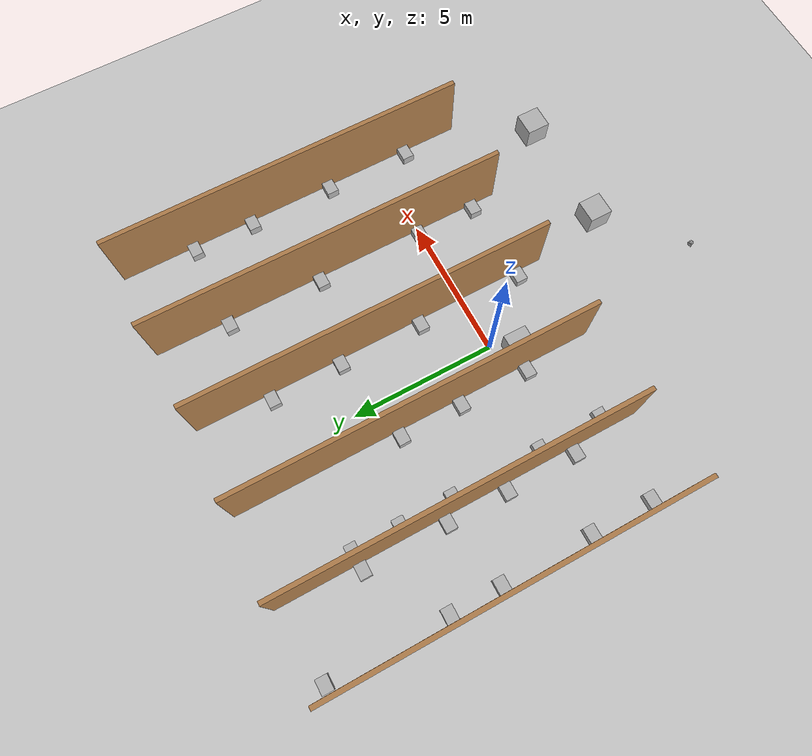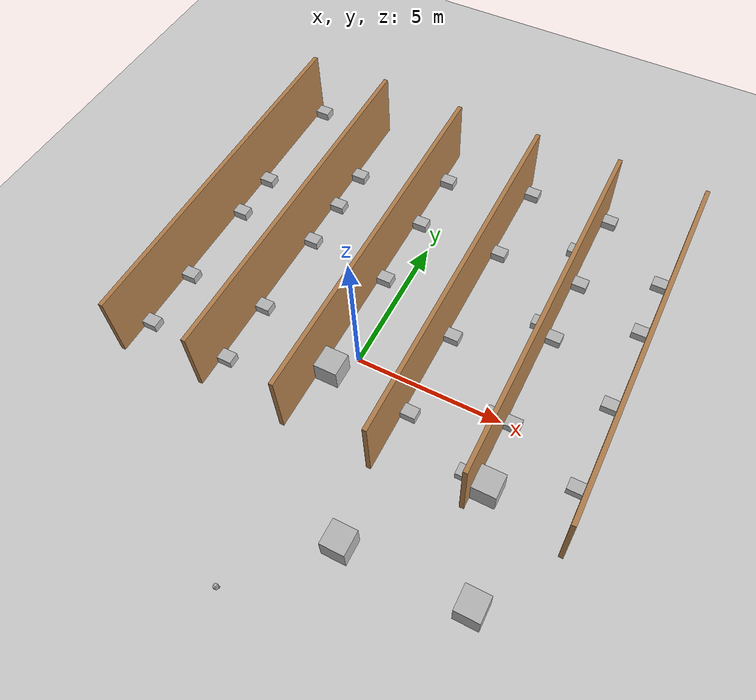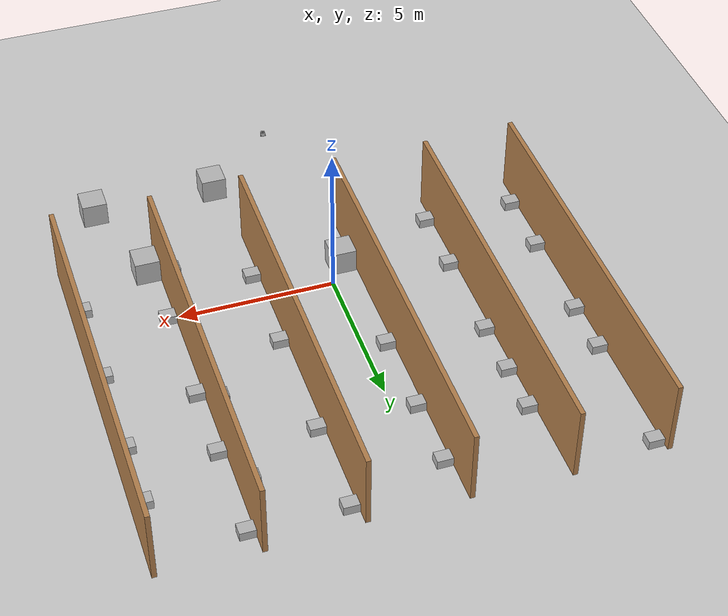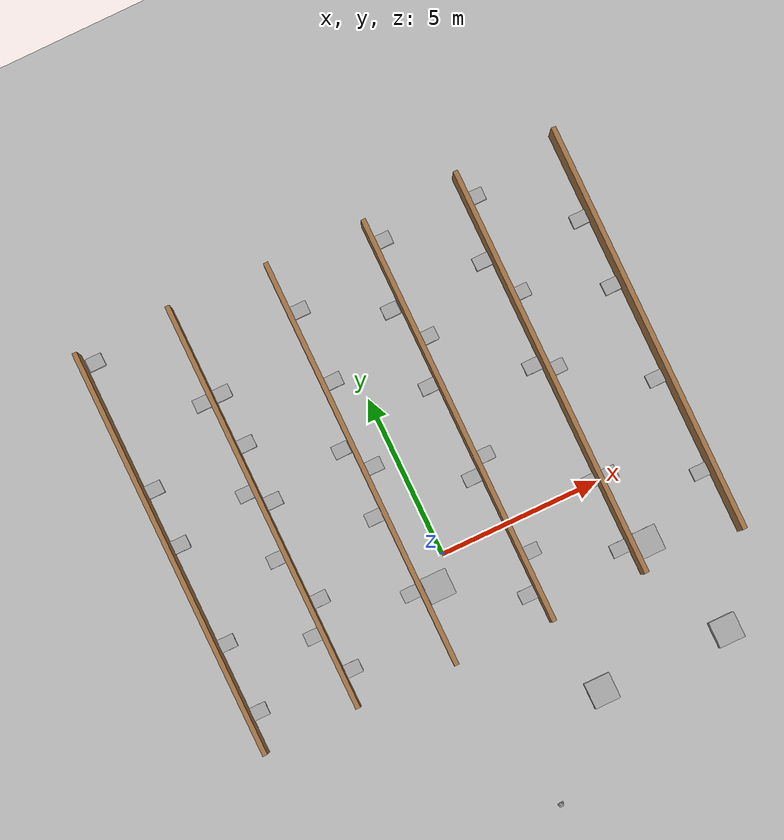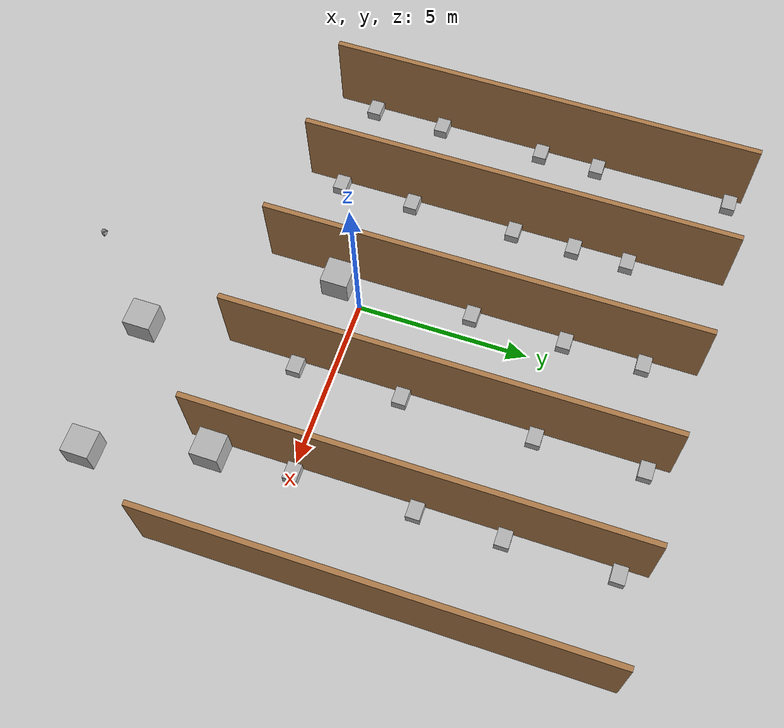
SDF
<sdf version="1.7">
 <world name="default">
  <light name="sun" type="directional">
   <pose>0 0 10 0 -0 0</pose>
   <diffuse>0.8 0.8 0.8 1</diffuse>
   <specular>0.2 0.2 0.2 1</specular>
   <attenuation>
    <range>1000</range>
    <constant>0.9</constant>
    <linear>0.01</linear>
    <quadratic>0.001</quadratic>
   </attenuation>
   <direction>-0.5 0.1 -0.9</direction>
   <spot><inner_angle>0</inner_angle><outer_angle>0</outer_angle><falloff>0</falloff></spot>
  </light>
  <model name="ground_plane">
   <static>1</static>
   <link name="link">
    <collision name="collision">
     <geometry><plane><normal>0 0 1</normal><size>100 100</size></plane></geometry>
     <surface><friction><ode><mu>100</mu><mu2>50</mu2></ode></friction></surface>
    </collision>
    <visual name="visual">
     <cast_shadows>0</cast_shadows>
     <geometry><plane><normal>0 0 1</normal><size>100 100</size></plane></geometry>
     <material>
      <script><uri>file://media/materials/scripts/gazebo.material</uri><name>Gazebo/Grey</name></script>
     </material>
    </visual>
   </link>
  </model>
  <gravity>0 0 -9.8</gravity>
  <magnetic_field>6e-06 2.3e-05 -4.2e-05</magnetic_field>
  <atmosphere type="adiabatic"/>
  <physics type="ode">
   <max_step_size>0.001</max_step_size>
   <real_time_factor>1</real_time_factor>
   <real_time_update_rate>1000</real_time_update_rate>
  </physics>
  <scene><ambient>0.4 0.4 0.4 1</ambient><background>0.7 0.7 0.7 1</background><shadows>1</shadows></scene>
  <audio><device>default</device></audio>
  <spherical_coordinates>
   <surface_model>EARTH_WGS84</surface_model>
   <latitude_deg>0</latitude_deg>
   <longitude_deg>0</longitude_deg>
   <elevation>0</elevation>
   <heading_deg>0</heading_deg>
  </spherical_coordinates>
  <model name="Untitled">
   <pose>-3.53983 3.34344 0 0 -0 0</pose>
   <link name="Wall_1">
    <collision name="Wall_1_Collision">
     <geometry><box><size>12.75 0.15 2.5</size></box></geometry>
     <pose>0 0 1.25 0 -0 0</pose>
    </collision>
    <visual name="Wall_1_Visual">
     <pose>0 0 1.25 0 -0 0</pose>
     <geometry><box><size>12.75 0.15 2.5</size></box></geometry>
     <material>
      <script><uri>file://media/materials/scripts/gazebo.material</uri><name>Gazebo/Wood</name></script>
      <ambient>1 1 1 1</ambient>
     </material>
     <meta><layer>0</layer></meta>
    </visual>
    <pose>-3.51396 -0 0 0 -0 -1.5708</pose>
   </link>
   <static>1</static>
  </model>
  <model name="Untitled_clone">
   <pose>-0.56503 3.41415 0 0 -0 0</pose>
   <link name="Wall_1">
    <collision name="Wall_1_Collision">
     <geometry><box><size>12.75 0.15 2.5</size></box></geometry>
     <pose>0 0 1.25 0 -0 0</pose>
    </collision>
    <visual name="Wall_1_Visual">
     <pose>0 0 1.25 0 -0 0</pose>
     <geometry><box><size>12.75 0.15 2.5</size></box></geometry>
     <material>
      <script><uri>file://media/materials/scripts/gazebo.material</uri><name>Gazebo/Wood</name></script>
      <ambient>1 1 1 1</ambient>
     </material>
     <meta><layer>0</layer></meta>
    </visual>
    <pose>-3.51396 -0 0 0 -0 -1.5708</pose>
   </link>
   <static>1</static>
  </model>
  <model name="Untitled_clone_0">
   <pose>2.51285 3.32201 0 0 -0 0</pose>
   <link name="Wall_1">
    <collision name="Wall_1_Collision">
     <geometry><box><size>12.75 0.15 2.5</size></box></geometry>
     <pose>0 0 1.25 0 -0 0</pose>
    </collision>
    <visual name="Wall_1_Visual">
     <pose>0 0 1.25 0 -0 0</pose>
     <geometry><box><size>12.75 0.15 2.5</size></box></geometry>
     <material>
      <script><uri>file://media/materials/scripts/gazebo.material</uri><name>Gazebo/Wood</name></script>
      <ambient>1 1 1 1</ambient>
     </material>
     <meta><layer>0</layer></meta>
    </visual>
    <pose>-3.51396 -0 0 0 -0 -1.5708</pose>
   </link>
   <static>1</static>
  </model>
  <model name="Untitled_clone_1">
   <pose>5.56827 3.2499 0 0 -0 0</pose>
   <link name="Wall_1">
    <collision name="Wall_1_Collision">
     <geometry><box><size>12.75 0.15 2.5</size></box></geometry>
     <pose>0 0 1.25 0 -0 0</pose>
    </collision>
    <visual name="Wall_1_Visual">
     <pose>0 0 1.25 0 -0 0</pose>
     <geometry><box><size>12.75 0.15 2.5</size></box></geometry>
     <material>
      <script><uri>file://media/materials/scripts/gazebo.material</uri><name>Gazebo/Wood</name></script>
      <ambient>1 1 1 1</ambient>
     </material>
     <meta><layer>0</layer></meta>
    </visual>
    <pose>-3.51396 -0 0 0 -0 -1.5708</pose>
   </link>
   <static>1</static>
  </model>
  <model name="Untitled_clone_2">
   <pose>8.54978 3.36593 0 0 -0 0</pose>
   <link name="Wall_1">
    <collision name="Wall_1_Collision">
     <geometry><box><size>12.75 0.15 2.5</size></box></geometry>
     <pose>0 0 1.25 0 -0 0</pose>
    </collision>
    <visual name="Wall_1_Visual">
     <pose>0 0 1.25 0 -0 0</pose>
     <geometry><box><size>12.75 0.15 2.5</size></box></geometry>
     <material>
      <script><uri>file://media/materials/scripts/gazebo.material</uri><name>Gazebo/Wood</name></script>
      <ambient>1 1 1 1</ambient>
     </material>
     <meta><layer>0</layer></meta>
    </visual>
    <pose>-3.51396 -0 0 0 -0 -1.5708</pose>
   </link>
   <static>1</static>
  </model>
  <model name="Untitled_clone_3">
   <pose>11.6265 3.29501 0 0 -0 0</pose>
   <link name="Wall_1">
    <collision name="Wall_1_Collision">
     <geometry><box><size>12.75 0.15 2.5</size></box></geometry>
     <pose>0 0 1.25 0 -0 0</pose>
    </collision>
    <visual name="Wall_1_Visual">
     <pose>0 0 1.25 0 -0 0</pose>
     <geometry><box><size>12.75 0.15 2.5</size></box></geometry>
     <material>
      <script><uri>file://media/materials/scripts/gazebo.material</uri><name>Gazebo/Wood</name></script>
      <ambient>1 1 1 1</ambient>
     </material>
     <meta><layer>0</layer></meta>
    </visual>
    <pose>-3.51396 -0 0 0 -0 -1.5708</pose>
   </link>
   <static>1</static>
  </model>
  <model name="number1">
   <pose>2.48066 -5.5478 0.4 0 -0 0</pose>
   <static>1</static>
   <link name="link">
    <visual name="visual">
     <geometry><mesh><uri>model://number1/meshes/number.dae</uri></mesh></geometry>
     <material>
      <script>
       <uri>model://number1/materials/scripts</uri>
       <uri>model://number1/materials/textures</uri>
       <name>Number/One</name>
      </script>
     </material>
    </visual>
   </link>
  </model>
  <model name="number2">
   <pose>-0.505231 -0.78441 0.4 0 -0 0</pose>
   <static>1</static>
   <link name="link">
    <visual name="visual">
     <geometry><mesh><uri>model://number1/meshes/number.dae</uri></mesh></geometry>
     <material>
      <script>
       <uri>model://number2/materials/scripts</uri>
       <uri>model://number2/materials/textures</uri>
       <name>Number/Two</name>
      </script>
     </material>
    </visual>
   </link>
  </model>
  <model name="number6">
   <pose>5.50741 -2.22939 0.4 0 -0 0</pose>
   <static>1</static>
   <link name="link">
    <visual name="visual">
     <geometry><mesh><uri>model://number1/meshes/number.dae</uri></mesh></geometry>
     <material>
      <script>
       <uri>model://number6/materials/scripts</uri>
       <uri>model://number6/materials/textures</uri>
       <name>Number/Six</name>
      </script>
     </material>
    </visual>
   </link>
  </model>
  <model name="number7">
   <pose>6.48938 -5.50489 0.4 0 -0 0</pose>
   <static>1</static>
   <link name="link">
    <visual name="visual">
     <geometry><mesh><uri>model://number1/meshes/number.dae</uri></mesh></geometry>
     <material>
      <script>
       <uri>model://number7/materials/scripts</uri>
       <uri>model://number7/materials/textures</uri>
       <name>Number/Seven</name>
      </script>
     </material>
    </visual>
   </link>
  </model>
  <model name="cardboard_box">
   <pose>-6.69674 9.36496 0.149 0 -0 0</pose>
   <link name="link">
    <inertial>
     <mass>2</mass>
     <inertia>
      <ixx>0.0416667</ixx>
      <ixy>0</ixy>
      <ixz>0</ixz>
      <iyy>0.0566667</iyy>
      <iyz>0</iyz>
      <izz>0.0683333</izz>
     </inertia>
    </inertial>
    <collision name="collision">
     <geometry><box><size>0.5 0.4 0.3</size></box></geometry>
     <surface>
      <friction><ode><mu>1</mu><mu2>1</mu2></ode></friction>
      <contact><ode><kp>1e+07</kp><kd>1</kd><min_depth>0.001</min_depth><max_vel>0.1</max_vel></ode></contact>
     </surface>
    </collision>
    <visual name="visual">
     <pose>0 0 -0.15 0 -0 0</pose>
     <geometry>
      <mesh><uri>model://cardboard_box/meshes/cardboard_box.dae</uri><scale>1.25932 1.00745 0.755591</scale></mesh>
     </geometry>
    </visual>
   </link>
  </model>
  <model name="cardboard_box_clone">
   <pose>-4.40341 6.95213 0.149 0 0 -4e-06</pose>
   <link name="link">
    <inertial>
     <mass>2</mass>
     <inertia>
      <ixx>0.0416667</ixx>
      <ixy>0</ixy>
      <ixz>0</ixz>
      <iyy>0.0566667</iyy>
      <iyz>0</iyz>
      <izz>0.0683333</izz>
     </inertia>
    </inertial>
    <collision name="collision">
     <geometry><box><size>0.5 0.4 0.3</size></box></geometry>
     <surface>
      <friction><ode><mu>1</mu><mu2>1</mu2></ode></friction>
      <contact><ode><kp>1e+07</kp><kd>1</kd><min_depth>0.001</min_depth><max_vel>0.1</max_vel></ode></contact>
     </surface>
    </collision>
    <visual name="visual">
     <pose>0 0 -0.15 0 -0 0</pose>
     <geometry>
      <mesh><uri>model://cardboard_box/meshes/cardboard_box.dae</uri><scale>1.25932 1.00745 0.755591</scale></mesh>
     </geometry>
    </visual>
   </link>
  </model>
  <model name="cardboard_box_clone_0">
   <pose>-6.72934 5.29143 0.149 0 -0 -2e-06</pose>
   <link name="link">
    <inertial>
     <mass>2</mass>
     <inertia>
      <ixx>0.0416667</ixx>
      <ixy>0</ixy>
      <ixz>0</ixz>
      <iyy>0.0566667</iyy>
      <iyz>0</iyz>
      <izz>0.0683333</izz>
     </inertia>
    </inertial>
    <collision name="collision">
     <geometry><box><size>0.5 0.4 0.3</size></box></geometry>
     <surface>
      <friction><ode><mu>1</mu><mu2>1</mu2></ode></friction>
      <contact><ode><kp>1e+07</kp><kd>1</kd><min_depth>0.001</min_depth><max_vel>0.1</max_vel></ode></contact>
     </surface>
    </collision>
    <visual name="visual">
     <pose>0 0 -0.15 0 -0 0</pose>
     <geometry>
      <mesh><uri>model://cardboard_box/meshes/cardboard_box.dae</uri><scale>1.25932 1.00745 0.755591</scale></mesh>
     </geometry>
    </visual>
   </link>
  </model>
  <model name="cardboard_box_clone_1">
   <pose>-4.40344 4.03564 0.149 0 0 -5e-06</pose>
   <link name="link">
    <inertial>
     <mass>2</mass>
     <inertia>
      <ixx>0.0416667</ixx>
      <ixy>0</ixy>
      <ixz>0</ixz>
      <iyy>0.0566667</iyy>
      <iyz>0</iyz>
      <izz>0.0683333</izz>
     </inertia>
    </inertial>
    <collision name="collision">
     <geometry><box><size>0.5 0.4 0.3</size></box></geometry>
     <surface>
      <friction><ode><mu>1</mu><mu2>1</mu2></ode></friction>
      <contact><ode><kp>1e+07</kp><kd>1</kd><min_depth>0.001</min_depth><max_vel>0.1</max_vel></ode></contact>
     </surface>
    </collision>
    <visual name="visual">
     <pose>0 0 -0.15 0 -0 0</pose>
     <geometry>
      <mesh><uri>model://cardboard_box/meshes/cardboard_box.dae</uri><scale>1.25932 1.00745 0.755591</scale></mesh>
     </geometry>
    </visual>
   </link>
  </model>
  <model name="cardboard_box_clone_2">
   <pose>-6.72935 3.52159 0.149 0 -0 -2e-06</pose>
   <link name="link">
    <inertial>
     <mass>2</mass>
     <inertia>
      <ixx>0.0416667</ixx>
      <ixy>0</ixy>
      <ixz>0</ixz>
      <iyy>0.0566667</iyy>
      <iyz>0</iyz>
      <izz>0.0683333</izz>
     </inertia>
    </inertial>
    <collision name="collision">
     <geometry><box><size>0.5 0.4 0.3</size></box></geometry>
     <surface>
      <friction><ode><mu>1</mu><mu2>1</mu2></ode></friction>
      <contact><ode><kp>1e+07</kp><kd>1</kd><min_depth>0.001</min_depth><max_vel>0.1</max_vel></ode></contact>
     </surface>
    </collision>
    <visual name="visual">
     <pose>0 0 -0.15 0 -0 0</pose>
     <geometry>
      <mesh><uri>model://cardboard_box/meshes/cardboard_box.dae</uri><scale>1.25932 1.00745 0.755591</scale></mesh>
     </geometry>
    </visual>
   </link>
  </model>
  <model name="cardboard_box_clone_3">
   <pose>-4.41829 1.93794 0.149 0 -0 0</pose>
   <link name="link">
    <inertial>
     <mass>2</mass>
     <inertia>
      <ixx>0.0416667</ixx>
      <ixy>0</ixy>
      <ixz>0</ixz>
      <iyy>0.0566667</iyy>
      <iyz>0</iyz>
      <izz>0.0683333</izz>
     </inertia>
    </inertial>
    <collision name="collision">
     <geometry><box><size>0.5 0.4 0.3</size></box></geometry>
     <surface>
      <friction><ode><mu>1</mu><mu2>1</mu2></ode></friction>
      <contact><ode><kp>1e+07</kp><kd>1</kd><min_depth>0.001</min_depth><max_vel>0.1</max_vel></ode></contact>
     </surface>
    </collision>
    <visual name="visual">
     <pose>0 0 -0.15 0 -0 0</pose>
     <geometry>
      <mesh><uri>model://cardboard_box/meshes/cardboard_box.dae</uri><scale>1.25932 1.00745 0.755591</scale></mesh>
     </geometry>
    </visual>
   </link>
  </model>
  <model name="cardboard_box_clone_4">
   <pose>-6.72935 0.354088 0.149 -0 -0 -3e-06</pose>
   <link name="link">
    <inertial>
     <mass>2</mass>
     <inertia>
      <ixx>0.0416667</ixx>
      <ixy>0</ixy>
      <ixz>0</ixz>
      <iyy>0.0566667</iyy>
      <iyz>0</iyz>
      <izz>0.0683333</izz>
     </inertia>
    </inertial>
    <collision name="collision">
     <geometry><box><size>0.5 0.4 0.3</size></box></geometry>
     <surface>
      <friction><ode><mu>1</mu><mu2>1</mu2></ode></friction>
      <contact><ode><kp>1e+07</kp><kd>1</kd><min_depth>0.001</min_depth><max_vel>0.1</max_vel></ode></contact>
     </surface>
    </collision>
    <visual name="visual">
     <pose>0 0 -0.15 0 -0 0</pose>
     <geometry>
      <mesh><uri>model://cardboard_box/meshes/cardboard_box.dae</uri><scale>1.25932 1.00745 0.755591</scale></mesh>
     </geometry>
    </visual>
   </link>
  </model>
  <model name="cardboard_box_clone_5">
   <pose>-4.40346 -0.545351 0.149 0 0 -5e-06</pose>
   <link name="link">
    <inertial>
     <mass>2</mass>
     <inertia>
      <ixx>0.0416667</ixx>
      <ixy>0</ixy>
      <ixz>0</ixz>
      <iyy>0.0566667</iyy>
      <iyz>0</iyz>
      <izz>0.0683333</izz>
     </inertia>
    </inertial>
    <collision name="collision">
     <geometry><box><size>0.5 0.4 0.3</size></box></geometry>
     <surface>
      <friction><ode><mu>1</mu><mu2>1</mu2></ode></friction>
      <contact><ode><kp>1e+07</kp><kd>1</kd><min_depth>0.001</min_depth><max_vel>0.1</max_vel></ode></contact>
     </surface>
    </collision>
    <visual name="visual">
     <pose>0 0 -0.15 0 -0 0</pose>
     <geometry>
      <mesh><uri>model://cardboard_box/meshes/cardboard_box.dae</uri><scale>1.25932 1.00745 0.755591</scale></mesh>
     </geometry>
    </visual>
   </link>
  </model>
  <model name="cardboard_box_clone_6">
   <pose>-6.72938 -1.8276 0.149 -0 -0 -3e-06</pose>
   <link name="link">
    <inertial>
     <mass>2</mass>
     <inertia>
      <ixx>0.0416667</ixx>
      <ixy>0</ixy>
      <ixz>0</ixz>
      <iyy>0.0566667</iyy>
      <iyz>0</iyz>
      <izz>0.0683333</izz>
     </inertia>
    </inertial>
    <collision name="collision">
     <geometry><box><size>0.5 0.4 0.3</size></box></geometry>
     <surface>
      <friction><ode><mu>1</mu><mu2>1</mu2></ode></friction>
      <contact><ode><kp>1e+07</kp><kd>1</kd><min_depth>0.001</min_depth><max_vel>0.1</max_vel></ode></contact>
     </surface>
    </collision>
    <visual name="visual">
     <pose>0 0 -0.15 0 -0 0</pose>
     <geometry>
      <mesh><uri>model://cardboard_box/meshes/cardboard_box.dae</uri><scale>1.25932 1.00745 0.755591</scale></mesh>
     </geometry>
    </visual>
   </link>
  </model>
  <model name="cardboard_box_clone_7">
   <pose>-3.75456 -1.8761 0.149 0 -0 -2e-06</pose>
   <link name="link">
    <inertial>
     <mass>2</mass>
     <inertia>
      <ixx>0.0416667</ixx>
      <ixy>0</ixy>
      <ixz>0</ixz>
      <iyy>0.0566667</iyy>
      <iyz>0</iyz>
      <izz>0.0683333</izz>
     </inertia>
    </inertial>
    <collision name="collision">
     <geometry><box><size>0.5 0.4 0.3</size></box></geometry>
     <surface>
      <friction><ode><mu>1</mu><mu2>1</mu2></ode></friction>
      <contact><ode><kp>1e+07</kp><kd>1</kd><min_depth>0.001</min_depth><max_vel>0.1</max_vel></ode></contact>
     </surface>
    </collision>
    <visual name="visual">
     <pose>0 0 -0.15 0 -0 0</pose>
     <geometry>
      <mesh><uri>model://cardboard_box/meshes/cardboard_box.dae</uri><scale>1.25932 1.00745 0.755591</scale></mesh>
     </geometry>
    </visual>
   </link>
  </model>
  <model name="cardboard_box_clone_8">
   <pose>-1.32555 -0.63421 0.149 0 0 -4e-06</pose>
   <link name="link">
    <inertial>
     <mass>2</mass>
     <inertia>
      <ixx>0.0416667</ixx>
      <ixy>0</ixy>
      <ixz>0</ixz>
      <iyy>0.0566667</iyy>
      <iyz>0</iyz>
      <izz>0.0683333</izz>
     </inertia>
    </inertial>
    <collision name="collision">
     <geometry><box><size>0.5 0.4 0.3</size></box></geometry>
     <surface>
      <friction><ode><mu>1</mu><mu2>1</mu2></ode></friction>
      <contact><ode><kp>1e+07</kp><kd>1</kd><min_depth>0.001</min_depth><max_vel>0.1</max_vel></ode></contact>
     </surface>
    </collision>
    <visual name="visual">
     <pose>0 0 -0.15 0 -0 0</pose>
     <geometry>
      <mesh><uri>model://cardboard_box/meshes/cardboard_box.dae</uri><scale>1.25932 1.00745 0.755591</scale></mesh>
     </geometry>
    </visual>
   </link>
  </model>
  <model name="cardboard_box_clone_9">
   <pose>-3.75459 0.356284 0.149 0 -0 -2e-06</pose>
   <link name="link">
    <inertial>
     <mass>2</mass>
     <inertia>
      <ixx>0.0416667</ixx>
      <ixy>0</ixy>
      <ixz>0</ixz>
      <iyy>0.0566667</iyy>
      <iyz>0</iyz>
      <izz>0.0683333</izz>
     </inertia>
    </inertial>
    <collision name="collision">
     <geometry><box><size>0.5 0.4 0.3</size></box></geometry>
     <surface>
      <friction><ode><mu>1</mu><mu2>1</mu2></ode></friction>
      <contact><ode><kp>1e+07</kp><kd>1</kd><min_depth>0.001</min_depth><max_vel>0.1</max_vel></ode></contact>
     </surface>
    </collision>
    <visual name="visual">
     <pose>0 0 -0.15 0 -0 0</pose>
     <geometry>
      <mesh><uri>model://cardboard_box/meshes/cardboard_box.dae</uri><scale>1.25932 1.00745 0.755591</scale></mesh>
     </geometry>
    </visual>
   </link>
  </model>
  <model name="cardboard_box_clone_10">
   <pose>-1.32557 1.82011 0.149 0 0 -4e-06</pose>
   <link name="link">
    <inertial>
     <mass>2</mass>
     <inertia>
      <ixx>0.0416667</ixx>
      <ixy>0</ixy>
      <ixz>0</ixz>
      <iyy>0.0566667</iyy>
      <iyz>0</iyz>
      <izz>0.0683333</izz>
     </inertia>
    </inertial>
    <collision name="collision">
     <geometry><box><size>0.5 0.4 0.3</size></box></geometry>
     <surface>
      <friction><ode><mu>1</mu><mu2>1</mu2></ode></friction>
      <contact><ode><kp>1e+07</kp><kd>1</kd><min_depth>0.001</min_depth><max_vel>0.1</max_vel></ode></contact>
     </surface>
    </collision>
    <visual name="visual">
     <pose>0 0 -0.15 0 -0 0</pose>
     <geometry>
      <mesh><uri>model://cardboard_box/meshes/cardboard_box.dae</uri><scale>1.25932 1.00745 0.755591</scale></mesh>
     </geometry>
    </visual>
   </link>
  </model>
  <model name="cardboard_box_clone_11">
   <pose>-3.75454 3.5139 0.149 -0 -0 -3e-06</pose>
   <link name="link">
    <inertial>
     <mass>2</mass>
     <inertia>
      <ixx>0.0416667</ixx>
      <ixy>0</ixy>
      <ixz>0</ixz>
      <iyy>0.0566667</iyy>
      <iyz>0</iyz>
      <izz>0.0683333</izz>
     </inertia>
    </inertial>
    <collision name="collision">
     <geometry><box><size>0.5 0.4 0.3</size></box></geometry>
     <surface>
      <friction><ode><mu>1</mu><mu2>1</mu2></ode></friction>
      <contact><ode><kp>1e+07</kp><kd>1</kd><min_depth>0.001</min_depth><max_vel>0.1</max_vel></ode></contact>
     </surface>
    </collision>
    <visual name="visual">
     <pose>0 0 -0.15 0 -0 0</pose>
     <geometry>
      <mesh><uri>model://cardboard_box/meshes/cardboard_box.dae</uri><scale>1.25932 1.00745 0.755591</scale></mesh>
     </geometry>
    </visual>
   </link>
  </model>
  <model name="cardboard_box_clone_12">
   <pose>-1.34513 3.99978 0.149 0 -0 0</pose>
   <link name="link">
    <inertial>
     <mass>2</mass>
     <inertia>
      <ixx>0.0416667</ixx>
      <ixy>0</ixy>
      <ixz>0</ixz>
      <iyy>0.0566667</iyy>
      <iyz>0</iyz>
      <izz>0.0683333</izz>
     </inertia>
    </inertial>
    <collision name="collision">
     <geometry><box><size>0.5 0.4 0.3</size></box></geometry>
     <surface>
      <friction><ode><mu>1</mu><mu2>1</mu2></ode></friction>
      <contact><ode><kp>1e+07</kp><kd>1</kd><min_depth>0.001</min_depth><max_vel>0.1</max_vel></ode></contact>
     </surface>
    </collision>
    <visual name="visual">
     <pose>0 0 -0.15 0 -0 0</pose>
     <geometry>
      <mesh><uri>model://cardboard_box/meshes/cardboard_box.dae</uri><scale>1.25932 1.00745 0.755591</scale></mesh>
     </geometry>
    </visual>
   </link>
  </model>
  <model name="cardboard_box_clone_13">
   <pose>-3.75453 5.34232 0.149 0 -0 -2e-06</pose>
   <link name="link">
    <inertial>
     <mass>2</mass>
     <inertia>
      <ixx>0.0416667</ixx>
      <ixy>0</ixy>
      <ixz>0</ixz>
      <iyy>0.0566667</iyy>
      <iyz>0</iyz>
      <izz>0.0683333</izz>
     </inertia>
    </inertial>
    <collision name="collision">
     <geometry><box><size>0.5 0.4 0.3</size></box></geometry>
     <surface>
      <friction><ode><mu>1</mu><mu2>1</mu2></ode></friction>
      <contact><ode><kp>1e+07</kp><kd>1</kd><min_depth>0.001</min_depth><max_vel>0.1</max_vel></ode></contact>
     </surface>
    </collision>
    <visual name="visual">
     <pose>0 0 -0.15 0 -0 0</pose>
     <geometry>
      <mesh><uri>model://cardboard_box/meshes/cardboard_box.dae</uri><scale>1.25932 1.00745 0.755591</scale></mesh>
     </geometry>
    </visual>
   </link>
  </model>
  <model name="cardboard_box_clone_14">
   <pose>-3.75454 6.96986 0.149 -0 -0 -3e-06</pose>
   <link name="link">
    <inertial>
     <mass>2</mass>
     <inertia>
      <ixx>0.0416667</ixx>
      <ixy>0</ixy>
      <ixz>0</ixz>
      <iyy>0.0566667</iyy>
      <iyz>0</iyz>
      <izz>0.0683333</izz>
     </inertia>
    </inertial>
    <collision name="collision">
     <geometry><box><size>0.5 0.4 0.3</size></box></geometry>
     <surface>
      <friction><ode><mu>1</mu><mu2>1</mu2></ode></friction>
      <contact><ode><kp>1e+07</kp><kd>1</kd><min_depth>0.001</min_depth><max_vel>0.1</max_vel></ode></contact>
     </surface>
    </collision>
    <visual name="visual">
     <pose>0 0 -0.15 0 -0 0</pose>
     <geometry>
      <mesh><uri>model://cardboard_box/meshes/cardboard_box.dae</uri><scale>1.25932 1.00745 0.755591</scale></mesh>
     </geometry>
    </visual>
   </link>
  </model>
  <model name="cardboard_box_clone_15">
   <pose>1.72993 1.6358 0.149 0 0 -5e-06</pose>
   <link name="link">
    <inertial>
     <mass>2</mass>
     <inertia>
      <ixx>0.0416667</ixx>
      <ixy>0</ixy>
      <ixz>0</ixz>
      <iyy>0.0566667</iyy>
      <iyz>0</iyz>
      <izz>0.0683333</izz>
     </inertia>
    </inertial>
    <collision name="collision">
     <geometry><box><size>0.5 0.4 0.3</size></box></geometry>
     <surface>
      <friction><ode><mu>1</mu><mu2>1</mu2></ode></friction>
      <contact><ode><kp>1e+07</kp><kd>1</kd><min_depth>0.001</min_depth><max_vel>0.1</max_vel></ode></contact>
     </surface>
    </collision>
    <visual name="visual">
     <pose>0 0 -0.15 0 -0 0</pose>
     <geometry>
      <mesh><uri>model://cardboard_box/meshes/cardboard_box.dae</uri><scale>1.25932 1.00745 0.755591</scale></mesh>
     </geometry>
    </visual>
   </link>
  </model>
  <model name="cardboard_box_clone_16">
   <pose>-0.676745 3.17335 0.149 0 -0 -2e-06</pose>
   <link name="link">
    <inertial>
     <mass>2</mass>
     <inertia>
      <ixx>0.0416667</ixx>
      <ixy>0</ixy>
      <ixz>0</ixz>
      <iyy>0.0566667</iyy>
      <iyz>0</iyz>
      <izz>0.0683333</izz>
     </inertia>
    </inertial>
    <collision name="collision">
     <geometry><box><size>0.5 0.4 0.3</size></box></geometry>
     <surface>
      <friction><ode><mu>1</mu><mu2>1</mu2></ode></friction>
      <contact><ode><kp>1e+07</kp><kd>1</kd><min_depth>0.001</min_depth><max_vel>0.1</max_vel></ode></contact>
     </surface>
    </collision>
    <visual name="visual">
     <pose>0 0 -0.15 0 -0 0</pose>
     <geometry>
      <mesh><uri>model://cardboard_box/meshes/cardboard_box.dae</uri><scale>1.25932 1.00745 0.755591</scale></mesh>
     </geometry>
    </visual>
   </link>
  </model>
  <model name="cardboard_box_clone_17">
   <pose>1.72987 4.57457 0.149 0 0 -5e-06</pose>
   <link name="link">
    <inertial>
     <mass>2</mass>
     <inertia>
      <ixx>0.0416667</ixx>
      <ixy>0</ixy>
      <ixz>0</ixz>
      <iyy>0.0566667</iyy>
      <iyz>0</iyz>
      <izz>0.0683333</izz>
     </inertia>
    </inertial>
    <collision name="collision">
     <geometry><box><size>0.5 0.4 0.3</size></box></geometry>
     <surface>
      <friction><ode><mu>1</mu><mu2>1</mu2></ode></friction>
      <contact><ode><kp>1e+07</kp><kd>1</kd><min_depth>0.001</min_depth><max_vel>0.1</max_vel></ode></contact>
     </surface>
    </collision>
    <visual name="visual">
     <pose>0 0 -0.15 0 -0 0</pose>
     <geometry>
      <mesh><uri>model://cardboard_box/meshes/cardboard_box.dae</uri><scale>1.25932 1.00745 0.755591</scale></mesh>
     </geometry>
    </visual>
   </link>
  </model>
  <model name="cardboard_box_clone_18">
   <pose>-0.676649 5.90813 0.149 -0 -0 -3e-06</pose>
   <link name="link">
    <inertial>
     <mass>2</mass>
     <inertia>
      <ixx>0.0416667</ixx>
      <ixy>0</ixy>
      <ixz>0</ixz>
      <iyy>0.0566667</iyy>
      <iyz>0</iyz>
      <izz>0.0683333</izz>
     </inertia>
    </inertial>
    <collision name="collision">
     <geometry><box><size>0.5 0.4 0.3</size></box></geometry>
     <surface>
      <friction><ode><mu>1</mu><mu2>1</mu2></ode></friction>
      <contact><ode><kp>1e+07</kp><kd>1</kd><min_depth>0.001</min_depth><max_vel>0.1</max_vel></ode></contact>
     </surface>
    </collision>
    <visual name="visual">
     <pose>0 0 -0.15 0 -0 0</pose>
     <geometry>
      <mesh><uri>model://cardboard_box/meshes/cardboard_box.dae</uri><scale>1.25932 1.00745 0.755591</scale></mesh>
     </geometry>
    </visual>
   </link>
  </model>
  <model name="cardboard_box_clone_19">
   <pose>1.69852 7.05257 0.149 0 -0 0</pose>
   <link name="link">
    <inertial>
     <mass>2</mass>
     <inertia>
      <ixx>0.0416667</ixx>
      <ixy>0</ixy>
      <ixz>0</ixz>
      <iyy>0.0566667</iyy>
      <iyz>0</iyz>
      <izz>0.0683333</izz>
     </inertia>
    </inertial>
    <collision name="collision">
     <geometry><box><size>0.5 0.4 0.3</size></box></geometry>
     <surface>
      <friction><ode><mu>1</mu><mu2>1</mu2></ode></friction>
      <contact><ode><kp>1e+07</kp><kd>1</kd><min_depth>0.001</min_depth><max_vel>0.1</max_vel></ode></contact>
     </surface>
    </collision>
    <visual name="visual">
     <pose>0 0 -0.15 0 -0 0</pose>
     <geometry>
      <mesh><uri>model://cardboard_box/meshes/cardboard_box.dae</uri><scale>1.25932 1.00745 0.755591</scale></mesh>
     </geometry>
    </visual>
   </link>
  </model>
  <model name="cardboard_box_clone_20">
   <pose>-0.676647 8.18816 0.149 -0 -0 -2e-06</pose>
   <link name="link">
    <inertial>
     <mass>2</mass>
     <inertia>
      <ixx>0.0416667</ixx>
      <ixy>0</ixy>
      <ixz>0</ixz>
      <iyy>0.0566667</iyy>
      <iyz>0</iyz>
      <izz>0.0683333</izz>
     </inertia>
    </inertial>
    <collision name="collision">
     <geometry><box><size>0.5 0.4 0.3</size></box></geometry>
     <surface>
      <friction><ode><mu>1</mu><mu2>1</mu2></ode></friction>
      <contact><ode><kp>1e+07</kp><kd>1</kd><min_depth>0.001</min_depth><max_vel>0.1</max_vel></ode></contact>
     </surface>
    </collision>
    <visual name="visual">
     <pose>0 0 -0.15 0 -0 0</pose>
     <geometry>
      <mesh><uri>model://cardboard_box/meshes/cardboard_box.dae</uri><scale>1.25932 1.00745 0.755591</scale></mesh>
     </geometry>
    </visual>
   </link>
  </model>
  <model name="cardboard_box_clone_21">
   <pose>2.37878 8.99199 0.149 0 -0 -3e-06</pose>
   <link name="link">
    <inertial>
     <mass>2</mass>
     <inertia>
      <ixx>0.0416667</ixx>
      <ixy>0</ixy>
      <ixz>0</ixz>
      <iyy>0.0566667</iyy>
      <iyz>0</iyz>
      <izz>0.0683333</izz>
     </inertia>
    </inertial>
    <collision name="collision">
     <geometry><box><size>0.5 0.4 0.3</size></box></geometry>
     <surface>
      <friction><ode><mu>1</mu><mu2>1</mu2></ode></friction>
      <contact><ode><kp>1e+07</kp><kd>1</kd><min_depth>0.001</min_depth><max_vel>0.1</max_vel></ode></contact>
     </surface>
    </collision>
    <visual name="visual">
     <pose>0 0 -0.15 0 -0 0</pose>
     <geometry>
      <mesh><uri>model://cardboard_box/meshes/cardboard_box.dae</uri><scale>1.25932 1.00745 0.755591</scale></mesh>
     </geometry>
    </visual>
   </link>
  </model>
  <model name="cardboard_box_clone_22">
   <pose>4.71138 7.19376 0.149 0 0 -4e-06</pose>
   <link name="link">
    <inertial>
     <mass>2</mass>
     <inertia>
      <ixx>0.0416667</ixx>
      <ixy>0</ixy>
      <ixz>0</ixz>
      <iyy>0.0566667</iyy>
      <iyz>0</iyz>
      <izz>0.0683333</izz>
     </inertia>
    </inertial>
    <collision name="collision">
     <geometry><box><size>0.5 0.4 0.3</size></box></geometry>
     <surface>
      <friction><ode><mu>1</mu><mu2>1</mu2></ode></friction>
      <contact><ode><kp>1e+07</kp><kd>1</kd><min_depth>0.001</min_depth><max_vel>0.1</max_vel></ode></contact>
     </surface>
    </collision>
    <visual name="visual">
     <pose>0 0 -0.15 0 -0 0</pose>
     <geometry>
      <mesh><uri>model://cardboard_box/meshes/cardboard_box.dae</uri><scale>1.25932 1.00745 0.755591</scale></mesh>
     </geometry>
    </visual>
   </link>
  </model>
  <model name="cardboard_box_clone_23">
   <pose>2.37876 5.90008 0.149 0 -0 -2e-06</pose>
   <link name="link">
    <inertial>
     <mass>2</mass>
     <inertia>
      <ixx>0.0416667</ixx>
      <ixy>0</ixy>
      <ixz>0</ixz>
      <iyy>0.0566667</iyy>
      <iyz>0</iyz>
      <izz>0.0683333</izz>
     </inertia>
    </inertial>
    <collision name="collision">
     <geometry><box><size>0.5 0.4 0.3</size></box></geometry>
     <surface>
      <friction><ode><mu>1</mu><mu2>1</mu2></ode></friction>
      <contact><ode><kp>1e+07</kp><kd>1</kd><min_depth>0.001</min_depth><max_vel>0.1</max_vel></ode></contact>
     </surface>
    </collision>
    <visual name="visual">
     <pose>0 0 -0.15 0 -0 0</pose>
     <geometry>
      <mesh><uri>model://cardboard_box/meshes/cardboard_box.dae</uri><scale>1.25932 1.00745 0.755591</scale></mesh>
     </geometry>
    </visual>
   </link>
  </model>
  <model name="cardboard_box_clone_24">
   <pose>4.71137 3.82364 0.149 0 0 -4e-06</pose>
   <link name="link">
    <inertial>
     <mass>2</mass>
     <inertia>
      <ixx>0.0416667</ixx>
      <ixy>0</ixy>
      <ixz>0</ixz>
      <iyy>0.0566667</iyy>
      <iyz>0</iyz>
      <izz>0.0683333</izz>
     </inertia>
    </inertial>
    <collision name="collision">
     <geometry><box><size>0.5 0.4 0.3</size></box></geometry>
     <surface>
      <friction><ode><mu>1</mu><mu2>1</mu2></ode></friction>
      <contact><ode><kp>1e+07</kp><kd>1</kd><min_depth>0.001</min_depth><max_vel>0.1</max_vel></ode></contact>
     </surface>
    </collision>
    <visual name="visual">
     <pose>0 0 -0.15 0 -0 0</pose>
     <geometry>
      <mesh><uri>model://cardboard_box/meshes/cardboard_box.dae</uri><scale>1.25932 1.00745 0.755591</scale></mesh>
     </geometry>
    </visual>
   </link>
  </model>
  <model name="cardboard_box_clone_25">
   <pose>2.37876 2.07959 0.149 0 -0 -1e-06</pose>
   <link name="link">
    <inertial>
     <mass>2</mass>
     <inertia>
      <ixx>0.0416667</ixx>
      <ixy>0</ixy>
      <ixz>0</ixz>
      <iyy>0.0566667</iyy>
      <iyz>0</iyz>
      <izz>0.0683333</izz>
     </inertia>
    </inertial>
    <collision name="collision">
     <geometry><box><size>0.5 0.4 0.3</size></box></geometry>
     <surface>
      <friction><ode><mu>1</mu><mu2>1</mu2></ode></friction>
      <contact><ode><kp>1e+07</kp><kd>1</kd><min_depth>0.001</min_depth><max_vel>0.1</max_vel></ode></contact>
     </surface>
    </collision>
    <visual name="visual">
     <pose>0 0 -0.15 0 -0 0</pose>
     <geometry>
      <mesh><uri>model://cardboard_box/meshes/cardboard_box.dae</uri><scale>1.25932 1.00745 0.755591</scale></mesh>
     </geometry>
    </visual>
   </link>
  </model>
  <model name="cardboard_box_clone_26">
   <pose>4.71136 0.062829 0.149 0 0 -5e-06</pose>
   <link name="link">
    <inertial>
     <mass>2</mass>
     <inertia>
      <ixx>0.0416667</ixx>
      <ixy>0</ixy>
      <ixz>0</ixz>
      <iyy>0.0566667</iyy>
      <iyz>0</iyz>
      <izz>0.0683333</izz>
     </inertia>
    </inertial>
    <collision name="collision">
     <geometry><box><size>0.5 0.4 0.3</size></box></geometry>
     <surface>
      <friction><ode><mu>1</mu><mu2>1</mu2></ode></friction>
      <contact><ode><kp>1e+07</kp><kd>1</kd><min_depth>0.001</min_depth><max_vel>0.1</max_vel></ode></contact>
     </surface>
    </collision>
    <visual name="visual">
     <pose>0 0 -0.15 0 -0 0</pose>
     <geometry>
      <mesh><uri>model://cardboard_box/meshes/cardboard_box.dae</uri><scale>1.25932 1.00745 0.755591</scale></mesh>
     </geometry>
    </visual>
   </link>
  </model>
  <model name="cardboard_box_clone_27">
   <pose>2.37875 -1.02066 0.149 -0 -0 -2e-06</pose>
   <link name="link">
    <inertial>
     <mass>2</mass>
     <inertia>
      <ixx>0.0416667</ixx>
      <ixy>0</ixy>
      <ixz>0</ixz>
      <iyy>0.0566667</iyy>
      <iyz>0</iyz>
      <izz>0.0683333</izz>
     </inertia>
    </inertial>
    <collision name="collision">
     <geometry><box><size>0.5 0.4 0.3</size></box></geometry>
     <surface>
      <friction><ode><mu>1</mu><mu2>1</mu2></ode></friction>
      <contact><ode><kp>1e+07</kp><kd>1</kd><min_depth>0.001</min_depth><max_vel>0.1</max_vel></ode></contact>
     </surface>
    </collision>
    <visual name="visual">
     <pose>0 0 -0.15 0 -0 0</pose>
     <geometry>
      <mesh><uri>model://cardboard_box/meshes/cardboard_box.dae</uri><scale>1.25932 1.00745 0.755591</scale></mesh>
     </geometry>
    </visual>
   </link>
  </model>
  <model name="cardboard_box_clone_28">
   <pose>4.71136 -2.05647 0.149 0 0 -5e-06</pose>
   <link name="link">
    <inertial>
     <mass>2</mass>
     <inertia>
      <ixx>0.0416667</ixx>
      <ixy>0</ixy>
      <ixz>0</ixz>
      <iyy>0.0566667</iyy>
      <iyz>0</iyz>
      <izz>0.0683333</izz>
     </inertia>
    </inertial>
    <collision name="collision">
     <geometry><box><size>0.5 0.4 0.3</size></box></geometry>
     <surface>
      <friction><ode><mu>1</mu><mu2>1</mu2></ode></friction>
      <contact><ode><kp>1e+07</kp><kd>1</kd><min_depth>0.001</min_depth><max_vel>0.1</max_vel></ode></contact>
     </surface>
    </collision>
    <visual name="visual">
     <pose>0 0 -0.15 0 -0 0</pose>
     <geometry>
      <mesh><uri>model://cardboard_box/meshes/cardboard_box.dae</uri><scale>1.25932 1.00745 0.755591</scale></mesh>
     </geometry>
    </visual>
   </link>
  </model>
  <model name="cardboard_box_clone_29">
   <pose>1.72985 -2.12622 0.149 0 0 -4e-06</pose>
   <link name="link">
    <inertial>
     <mass>2</mass>
     <inertia>
      <ixx>0.0416667</ixx>
      <ixy>0</ixy>
      <ixz>0</ixz>
      <iyy>0.0566667</iyy>
      <iyz>0</iyz>
      <izz>0.0683333</izz>
     </inertia>
    </inertial>
    <collision name="collision">
     <geometry><box><size>0.5 0.4 0.3</size></box></geometry>
     <surface>
      <friction><ode><mu>1</mu><mu2>1</mu2></ode></friction>
      <contact><ode><kp>1e+07</kp><kd>1</kd><min_depth>0.001</min_depth><max_vel>0.1</max_vel></ode></contact>
     </surface>
    </collision>
    <visual name="visual">
     <pose>0 0 -0.15 0 -0 0</pose>
     <geometry>
      <mesh><uri>model://cardboard_box/meshes/cardboard_box.dae</uri><scale>1.25932 1.00745 0.755591</scale></mesh>
     </geometry>
    </visual>
   </link>
  </model>
  <model name="cardboard_box_clone_30">
   <pose>7.78808 -1.0404 0.149 0 0 -5e-06</pose>
   <link name="link">
    <inertial>
     <mass>2</mass>
     <inertia>
      <ixx>0.0416667</ixx>
      <ixy>0</ixy>
      <ixz>0</ixz>
      <iyy>0.0566667</iyy>
      <iyz>0</iyz>
      <izz>0.0683333</izz>
     </inertia>
    </inertial>
    <collision name="collision">
     <geometry><box><size>0.5 0.4 0.3</size></box></geometry>
     <surface>
      <friction><ode><mu>1</mu><mu2>1</mu2></ode></friction>
      <contact><ode><kp>1e+07</kp><kd>1</kd><min_depth>0.001</min_depth><max_vel>0.1</max_vel></ode></contact>
     </surface>
    </collision>
    <visual name="visual">
     <pose>0 0 -0.15 0 -0 0</pose>
     <geometry>
      <mesh><uri>model://cardboard_box/meshes/cardboard_box.dae</uri><scale>1.25932 1.00745 0.755591</scale></mesh>
     </geometry>
    </visual>
   </link>
  </model>
  <model name="cardboard_box_clone_31">
   <pose>5.3604 0.036369 0.149 0 -0 -2e-06</pose>
   <link name="link">
    <inertial>
     <mass>2</mass>
     <inertia>
      <ixx>0.0416667</ixx>
      <ixy>0</ixy>
      <ixz>0</ixz>
      <iyy>0.0566667</iyy>
      <iyz>0</iyz>
      <izz>0.0683333</izz>
     </inertia>
    </inertial>
    <collision name="collision">
     <geometry><box><size>0.5 0.4 0.3</size></box></geometry>
     <surface>
      <friction><ode><mu>1</mu><mu2>1</mu2></ode></friction>
      <contact><ode><kp>1e+07</kp><kd>1</kd><min_depth>0.001</min_depth><max_vel>0.1</max_vel></ode></contact>
     </surface>
    </collision>
    <visual name="visual">
     <pose>0 0 -0.15 0 -0 0</pose>
     <geometry>
      <mesh><uri>model://cardboard_box/meshes/cardboard_box.dae</uri><scale>1.25932 1.00745 0.755591</scale></mesh>
     </geometry>
    </visual>
   </link>
  </model>
  <model name="cardboard_box_clone_32">
   <pose>7.78808 1.95564 0.149 0 0 -4e-06</pose>
   <link name="link">
    <inertial>
     <mass>2</mass>
     <inertia>
      <ixx>0.0416667</ixx>
      <ixy>0</ixy>
      <ixz>0</ixz>
      <iyy>0.0566667</iyy>
      <iyz>0</iyz>
      <izz>0.0683333</izz>
     </inertia>
    </inertial>
    <collision name="collision">
     <geometry><box><size>0.5 0.4 0.3</size></box></geometry>
     <surface>
      <friction><ode><mu>1</mu><mu2>1</mu2></ode></friction>
      <contact><ode><kp>1e+07</kp><kd>1</kd><min_depth>0.001</min_depth><max_vel>0.1</max_vel></ode></contact>
     </surface>
    </collision>
    <visual name="visual">
     <pose>0 0 -0.15 0 -0 0</pose>
     <geometry>
      <mesh><uri>model://cardboard_box/meshes/cardboard_box.dae</uri><scale>1.25932 1.00745 0.755591</scale></mesh>
     </geometry>
    </visual>
   </link>
  </model>
  <model name="cardboard_box_clone_33">
   <pose>5.36091 3.48437 0.149 0 0 -5e-06</pose>
   <link name="link">
    <inertial>
     <mass>2</mass>
     <inertia>
      <ixx>0.0416667</ixx>
      <ixy>0</ixy>
      <ixz>0</ixz>
      <iyy>0.0566667</iyy>
      <iyz>0</iyz>
      <izz>0.0683333</izz>
     </inertia>
    </inertial>
    <collision name="collision">
     <geometry><box><size>0.5 0.4 0.3</size></box></geometry>
     <surface>
      <friction><ode><mu>1</mu><mu2>1</mu2></ode></friction>
      <contact><ode><kp>1e+07</kp><kd>1</kd><min_depth>0.001</min_depth><max_vel>0.1</max_vel></ode></contact>
     </surface>
    </collision>
    <visual name="visual">
     <pose>0 0 -0.15 0 -0 0</pose>
     <geometry>
      <mesh><uri>model://cardboard_box/meshes/cardboard_box.dae</uri><scale>1.25932 1.00745 0.755591</scale></mesh>
     </geometry>
    </visual>
   </link>
  </model>
  <model name="cardboard_box_clone_34">
   <pose>7.7881 4.94525 0.149 0 0 -4e-06</pose>
   <link name="link">
    <inertial>
     <mass>2</mass>
     <inertia>
      <ixx>0.0416667</ixx>
      <ixy>0</ixy>
      <ixz>0</ixz>
      <iyy>0.0566667</iyy>
      <iyz>0</iyz>
      <izz>0.0683333</izz>
     </inertia>
    </inertial>
    <collision name="collision">
     <geometry><box><size>0.5 0.4 0.3</size></box></geometry>
     <surface>
      <friction><ode><mu>1</mu><mu2>1</mu2></ode></friction>
      <contact><ode><kp>1e+07</kp><kd>1</kd><min_depth>0.001</min_depth><max_vel>0.1</max_vel></ode></contact>
     </surface>
    </collision>
    <visual name="visual">
     <pose>0 0 -0.15 0 -0 0</pose>
     <geometry>
      <mesh><uri>model://cardboard_box/meshes/cardboard_box.dae</uri><scale>1.25932 1.00745 0.755591</scale></mesh>
     </geometry>
    </visual>
   </link>
  </model>
  <model name="cardboard_box_clone_35">
   <pose>5.36028 5.90499 0.149 0 -0 -3e-06</pose>
   <link name="link">
    <inertial>
     <mass>2</mass>
     <inertia>
      <ixx>0.0416667</ixx>
      <ixy>0</ixy>
      <ixz>0</ixz>
      <iyy>0.0566667</iyy>
      <iyz>0</iyz>
      <izz>0.0683333</izz>
     </inertia>
    </inertial>
    <collision name="collision">
     <geometry><box><size>0.5 0.4 0.3</size></box></geometry>
     <surface>
      <friction><ode><mu>1</mu><mu2>1</mu2></ode></friction>
      <contact><ode><kp>1e+07</kp><kd>1</kd><min_depth>0.001</min_depth><max_vel>0.1</max_vel></ode></contact>
     </surface>
    </collision>
    <visual name="visual">
     <pose>0 0 -0.15 0 -0 0</pose>
     <geometry>
      <mesh><uri>model://cardboard_box/meshes/cardboard_box.dae</uri><scale>1.25932 1.00745 0.755591</scale></mesh>
     </geometry>
    </visual>
   </link>
  </model>
  <model name="cardboard_box_clone_36">
   <pose>7.7881 7.09255 0.149 0 0 -4e-06</pose>
   <link name="link">
    <inertial>
     <mass>2</mass>
     <inertia>
      <ixx>0.0416667</ixx>
      <ixy>0</ixy>
      <ixz>0</ixz>
      <iyy>0.0566667</iyy>
      <iyz>0</iyz>
      <izz>0.0683333</izz>
     </inertia>
    </inertial>
    <collision name="collision">
     <geometry><box><size>0.5 0.4 0.3</size></box></geometry>
     <surface>
      <friction><ode><mu>1</mu><mu2>1</mu2></ode></friction>
      <contact><ode><kp>1e+07</kp><kd>1</kd><min_depth>0.001</min_depth><max_vel>0.1</max_vel></ode></contact>
     </surface>
    </collision>
    <visual name="visual">
     <pose>0 0 -0.15 0 -0 0</pose>
     <geometry>
      <mesh><uri>model://cardboard_box/meshes/cardboard_box.dae</uri><scale>1.25932 1.00745 0.755591</scale></mesh>
     </geometry>
    </visual>
   </link>
  </model>
  <model name="cardboard_box_clone_37">
   <pose>5.36028 8.98379 0.149 0 -0 -2e-06</pose>
   <link name="link">
    <inertial>
     <mass>2</mass>
     <inertia>
      <ixx>0.0416667</ixx>
      <ixy>0</ixy>
      <ixz>0</ixz>
      <iyy>0.0566667</iyy>
      <iyz>0</iyz>
      <izz>0.0683333</izz>
     </inertia>
    </inertial>
    <collision name="collision">
     <geometry><box><size>0.5 0.4 0.3</size></box></geometry>
     <surface>
      <friction><ode><mu>1</mu><mu2>1</mu2></ode></friction>
      <contact><ode><kp>1e+07</kp><kd>1</kd><min_depth>0.001</min_depth><max_vel>0.1</max_vel></ode></contact>
     </surface>
    </collision>
    <visual name="visual">
     <pose>0 0 -0.15 0 -0 0</pose>
     <geometry>
      <mesh><uri>model://cardboard_box/meshes/cardboard_box.dae</uri><scale>1.25932 1.00745 0.755591</scale></mesh>
     </geometry>
    </visual>
   </link>
  </model>
  <model name="turtlebot3_burger">
   <pose>5e-06 -8 0.008531 0.000447 0.005778 1.5708</pose>
   <link name="base_footprint">
    <inertial>
     <inertia><ixx>1</ixx><ixy>0</ixy><ixz>0</ixz><iyy>1</iyy><iyz>0</iyz><izz>1</izz></inertia>
     <mass>1</mass>
    </inertial>
   </link>
   <link name="base_link">
    <inertial>
     <pose>-0.032 0 0.07 0 -0 0</pose>
     <inertia>
      <ixx>0.723974</ixx>
      <ixy>4.6864e-10</ixy>
      <ixz>-1.09526e-08</ixz>
      <iyy>0.723974</iyy>
      <iyz>2.85826e-09</iyz>
      <izz>0.65305</izz>
     </inertia>
     <mass>0.825735</mass>
    </inertial>
    <collision name="base_collision">
     <pose>-0.032 0 0.07 0 -0 0</pose>
     <geometry><box><size>0.14 0.14 0.14</size></box></geometry>
    </collision>
    <visual name="base_visual">
     <pose>-0.032 0 0 0 -0 0</pose>
     <geometry>
      <mesh><uri>model://turtlebot3_common/meshes/burger_base.dae</uri><scale>0.001 0.001 0.001</scale></mesh>
     </geometry>
    </visual>
   </link>
   <link name="imu_link">
    <sensor name="tb3_imu" type="imu">
     <always_on>1</always_on>
     <update_rate>200</update_rate>
     <imu>
      <angular_velocity>
       <x><noise type="gaussian"><mean>0</mean><stddev>0.0002</stddev></noise></x>
       <y><noise type="gaussian"><mean>0</mean><stddev>0.0002</stddev></noise></y>
       <z><noise type="gaussian"><mean>0</mean><stddev>0.0002</stddev></noise></z>
      </angular_velocity>
      <linear_acceleration>
       <x><noise type="gaussian"><mean>0</mean><stddev>0.017</stddev></noise></x>
       <y><noise type="gaussian"><mean>0</mean><stddev>0.017</stddev></noise></y>
       <z><noise type="gaussian"><mean>0</mean><stddev>0.017</stddev></noise></z>
      </linear_acceleration>
     </imu>
     <plugin name="turtlebot3_imu" filename="libgazebo_ros_imu_sensor.so">
      <ros><remapping>~/out:=imu</remapping></ros>
     </plugin>
    </sensor>
    <inertial>
     <inertia><ixx>1</ixx><ixy>0</ixy><ixz>0</ixz><iyy>1</iyy><iyz>0</iyz><izz>1</izz></inertia>
     <mass>1</mass>
    </inertial>
   </link>
   <link name="base_scan">
    <inertial>
     <pose>-0.02 0 0.161 0 -0 0</pose>
     <inertia><ixx>0.001</ixx><ixy>0</ixy><ixz>0</ixz><iyy>0.001</iyy><iyz>0</iyz><izz>0.001</izz></inertia>
     <mass>0.114</mass>
    </inertial>
    <collision name="lidar_sensor_collision">
     <pose>-0.02 0 0.161 0 -0 0</pose>
     <geometry><cylinder><radius>0.0508</radius><length>0.055</length></cylinder></geometry>
    </collision>
    <visual name="lidar_sensor_visual">
     <pose>-0.032 0 0.171 0 -0 0</pose>
     <geometry>
      <mesh><uri>model://turtlebot3_common/meshes/lds.dae</uri><scale>0.001 0.001 0.001</scale></mesh>
     </geometry>
    </visual>
    <sensor name="hls_lfcd_lds" type="ray">
     <always_on>1</always_on>
     <visualize>1</visualize>
     <pose>-0.032 0 0.171 0 -0 0</pose>
     <update_rate>5</update_rate>
     <ray>
      <scan>
       <horizontal>
        <samples>360</samples>
        <resolution>1</resolution>
        <min_angle>0</min_angle>
        <max_angle>6.28</max_angle>
       </horizontal>
       <vertical><samples>1</samples><min_angle>0</min_angle><max_angle>0</max_angle></vertical>
      </scan>
      <range><min>0.12</min><max>3.5</max><resolution>0.015</resolution></range>
      <noise><type>gaussian</type><mean>0</mean><stddev>0.01</stddev></noise>
     </ray>
     <plugin name="turtlebot3_laserscan" filename="libgazebo_ros_ray_sensor.so">
      <ros><remapping>~/out:=scan</remapping></ros>
      <output_type>sensor_msgs/LaserScan</output_type>
      <frame_name>base_scan</frame_name>
     </plugin>
    </sensor>
   </link>
   <link name="wheel_left_link">
    <inertial>
     <pose>0 0.08 0.023 -1.57 0 0</pose>
     <inertia>
      <ixx>0.00181582</ixx>
      <ixy>-9.3392e-12</ixy>
      <ixz>1.04909e-11</ixz>
      <iyy>0.00329221</iyy>
      <iyz>5.75694e-11</iyz>
      <izz>0.00181582</izz>
     </inertia>
     <mass>0.0284989</mass>
    </inertial>
    <collision name="wheel_left_collision">
     <pose>0 0.08 0.023 -1.57 0 0</pose>
     <geometry><cylinder><radius>0.033</radius><length>0.018</length></cylinder></geometry>
     <surface>
      <friction>
       <ode><mu>100000</mu><mu2>100000</mu2><fdir1>0 0 0</fdir1><slip1>0</slip1><slip2>0</slip2></ode>
      </friction>
      <contact>
       <ode>
        <soft_cfm>0</soft_cfm>
        <soft_erp>0.2</soft_erp>
        <kp>100000</kp>
        <kd>1</kd>
        <max_vel>0.01</max_vel>
        <min_depth>0.001</min_depth>
       </ode>
      </contact>
     </surface>
    </collision>
    <visual name="wheel_left_visual">
     <pose>0 0.08 0.023 0 -0 0</pose>
     <geometry>
      <mesh><uri>model://turtlebot3_common/meshes/tire.dae</uri><scale>0.001 0.001 0.001</scale></mesh>
     </geometry>
    </visual>
   </link>
   <link name="wheel_right_link">
    <inertial>
     <pose>0 -0.08 0.023 -1.57 0 0</pose>
     <inertia>
      <ixx>0.00181582</ixx>
      <ixy>-9.3392e-12</ixy>
      <ixz>1.04909e-11</ixz>
      <iyy>0.00329221</iyy>
      <iyz>5.75694e-11</iyz>
      <izz>0.00181582</izz>
     </inertia>
     <mass>0.0284989</mass>
    </inertial>
    <collision name="wheel_right_collision">
     <pose>0 -0.08 0.023 -1.57 0 0</pose>
     <geometry><cylinder><radius>0.033</radius><length>0.018</length></cylinder></geometry>
     <surface>
      <friction>
       <ode><mu>100000</mu><mu2>100000</mu2><fdir1>0 0 0</fdir1><slip1>0</slip1><slip2>0</slip2></ode>
      </friction>
      <contact>
       <ode>
        <soft_cfm>0</soft_cfm>
        <soft_erp>0.2</soft_erp>
        <kp>100000</kp>
        <kd>1</kd>
        <max_vel>0.01</max_vel>
        <min_depth>0.001</min_depth>
       </ode>
      </contact>
     </surface>
    </collision>
    <visual name="wheel_right_visual">
     <pose>0 -0.08 0.023 0 -0 0</pose>
     <geometry>
      <mesh><uri>model://turtlebot3_common/meshes/tire.dae</uri><scale>0.001 0.001 0.001</scale></mesh>
     </geometry>
    </visual>
   </link>
   <link name="caster_back_link">
    <pose>-0.081 0 -0.004 -1.57 0 0</pose>
    <inertial>
     <mass>0.005</mass>
     <inertia><ixx>0.001</ixx><ixy>0</ixy><ixz>0</ixz><iyy>0.001</iyy><iyz>0</iyz><izz>0.001</izz></inertia>
    </inertial>
    <collision name="collision">
     <geometry><sphere><radius>0.005</radius></sphere></geometry>
     <surface>
      <contact>
       <ode>
        <soft_cfm>0</soft_cfm>
        <soft_erp>0.2</soft_erp>
        <kp>100000</kp>
        <kd>1</kd>
        <max_vel>0.01</max_vel>
        <min_depth>0.001</min_depth>
       </ode>
      </contact>
     </surface>
    </collision>
   </link>
   <joint name="base_joint" type="fixed">
    <parent>base_footprint</parent>
    <child>base_link</child>
    <pose>0 0 0.01 0 -0 0</pose>
   </joint>
   <joint name="wheel_left_joint" type="revolute">
    <parent>base_link</parent>
    <child>wheel_left_link</child>
    <pose>0 0.08 0.023 -1.57 0 0</pose>
    <axis>
     <xyz>0 0 1</xyz>
     <limit><lower>-1e+16</lower><upper>1e+16</upper></limit>
     <dynamics><spring_reference>0</spring_reference><spring_stiffness>0</spring_stiffness></dynamics>
    </axis>
   </joint>
   <joint name="wheel_right_joint" type="revolute">
    <parent>base_link</parent>
    <child>wheel_right_link</child>
    <pose>0 -0.08 0.023 -1.57 0 0</pose>
    <axis>
     <xyz>0 0 1</xyz>
     <limit><lower>-1e+16</lower><upper>1e+16</upper></limit>
     <dynamics><spring_reference>0</spring_reference><spring_stiffness>0</spring_stiffness></dynamics>
    </axis>
   </joint>
   <joint name="caster_back_joint" type="ball"><parent>base_link</parent><child>caster_back_link</child></joint>
   <joint name="imu_joint" type="fixed">
    <parent>base_link</parent>
    <child>imu_link</child>
    <pose>-0.032 0 0.068 0 -0 0</pose>
    <axis><xyz>0 0 1</xyz><limit><lower>-1e+16</lower><upper>1e+16</upper></limit></axis>
   </joint>
   <joint name="lidar_joint" type="fixed">
    <parent>base_link</parent>
    <child>base_scan</child>
    <pose>-0.032 0 0.171 0 -0 0</pose>
    <axis><xyz>0 0 1</xyz><limit><lower>-1e+16</lower><upper>1e+16</upper></limit></axis>
   </joint>
   <plugin name="turtlebot3_diff_drive" filename="libgazebo_ros_diff_drive.so">
    <update_rate>30</update_rate>
    <left_joint>wheel_left_joint</left_joint>
    <right_joint>wheel_right_joint</right_joint>
    <wheel_separation>0.160</wheel_separation>
    <wheel_diameter>0.066</wheel_diameter>
    <max_wheel_torque>20</max_wheel_torque>
    <max_wheel_acceleration>1.0</max_wheel_acceleration>
    <command_topic>cmd_vel</command_topic>
    <publish_odom>1</publish_odom>
    <publish_odom_tf>1</publish_odom_tf>
    <publish_wheel_tf>0</publish_wheel_tf>
    <odometry_topic>odom</odometry_topic>
    <odometry_frame>odom</odometry_frame>
    <robot_base_frame>base_footprint</robot_base_frame>
   </plugin>
   <plugin name="turtlebot3_joint_state" filename="libgazebo_ros_joint_state_publisher.so">
    <ros><remapping>~/out:=joint_states</remapping></ros>
    <update_rate>30</update_rate>
    <joint_name>wheel_left_joint</joint_name>
    <joint_name>wheel_right_joint</joint_name>
   </plugin>
  </model>
 </world>
</sdf>
